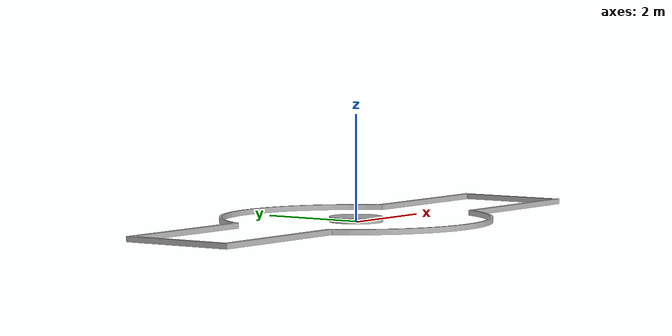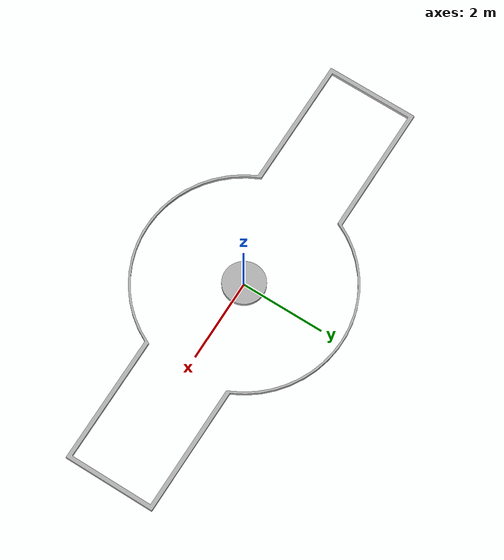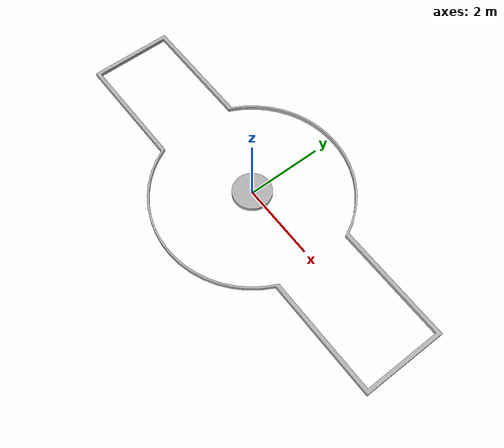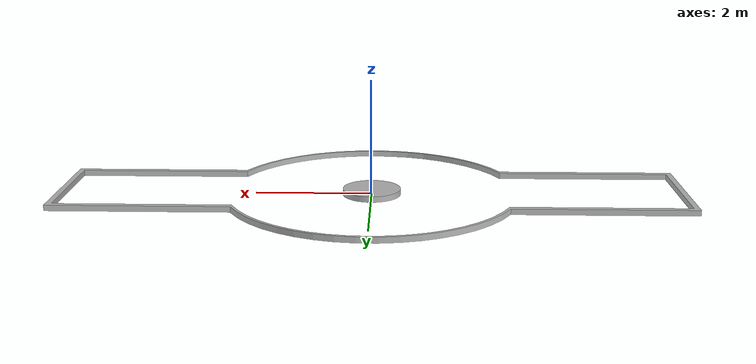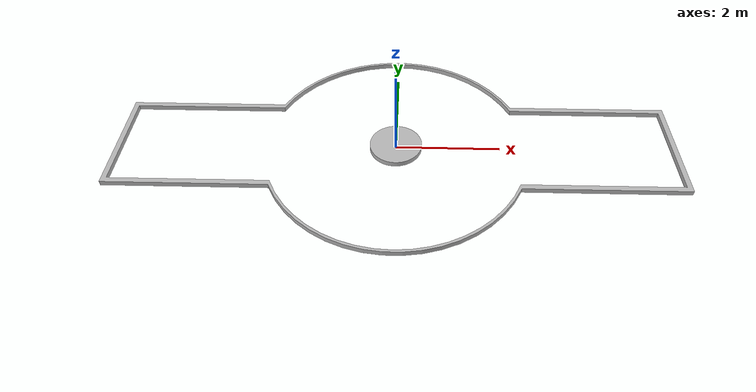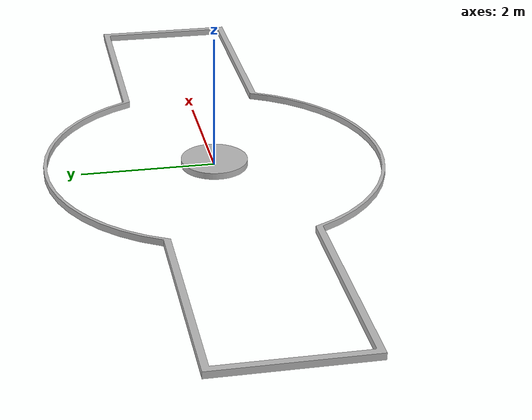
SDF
<?xml version="1.0" ?>
<sdf version="1.5">
  <model name="main_track_delimiters">
    <static>true</static>
    <link name="link">
      <collision name="collision">
        <geometry>
          <mesh>
            <scale>1.0 1.0 1.0</scale>
            <uri>model://delimiters/mesh/delimiters.dae</uri>
          </mesh>
        </geometry>
      </collision>
      <visual name="visual">
        <geometry>
          <mesh>
            <scale>1.0 1.0 1.0</scale>
            <uri>model://delimiters/mesh/delimiters.dae</uri>
          </mesh>
        </geometry>
      </visual>
    </link>
  </model>
</sdf>
